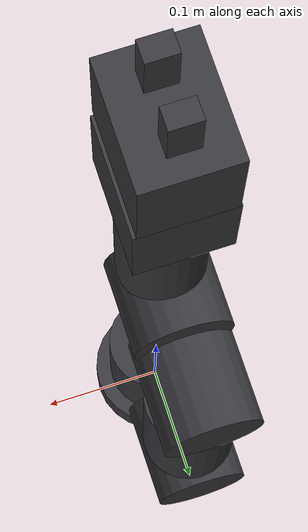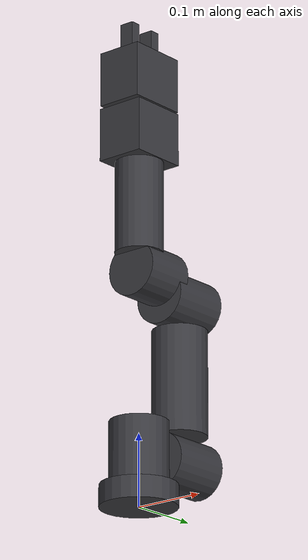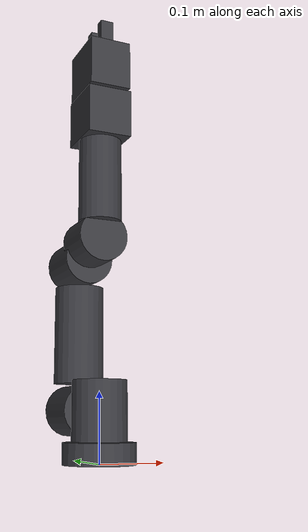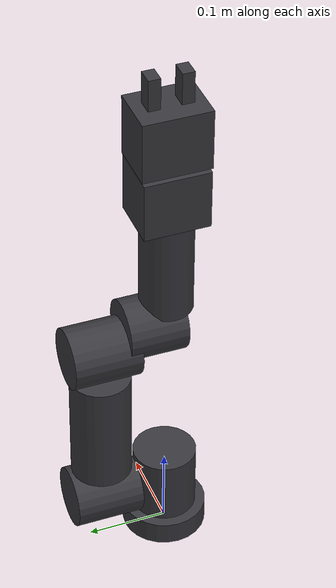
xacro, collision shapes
<?xml version="1.0"?>
<robot name="eb15" xmlns:xacro="http://www.ros.org/wiki/xacro">

  <!-- Arguments -->
  <xacro:arg name="use_gripper" default="true"/>
  <xacro:arg name="use_sim" default="false"/>
  <xacro:arg name="controllers_yaml" default="$(find eb15_description)/config/eb15_controllers.yaml"/>

  <!-- Core Robot Description Modules -->
  <xacro:include filename="materials.xacro"/>
  <xacro:include filename="base.xacro"/>
  <xacro:include filename="shoulder.xacro"/>
  <xacro:include filename="upper_arm.xacro"/>
  <xacro:include filename="forearm.xacro"/>

  <!-- End Effector (EBG-20 Adaptive Gripper) -->
  <xacro:if value="$(arg use_gripper)">
    <xacro:include filename="gripper.xacro"/>
  </xacro:if>

  <!-- Gazebo Physics & ros2_control Simulation Plugins -->
  <xacro:if value="$(arg use_sim)">
    <xacro:include filename="eb15.ros2_control.xacro"/>
    <xacro:include filename="eb15.gazebo.xacro"/>

    <xacro:eb15_ros2_control name="EB15GazeboSim"/>
    <xacro:eb15_gazebo controllers_yaml="$(arg controllers_yaml)"/>
  </xacro:if>

</robot>

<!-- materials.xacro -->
<robot xmlns:xacro="http://www.ros.org/wiki/xacro">

  <!-- MATERIALS DEFINITION                              -->
  <material name="dark_gray">
    <color rgba="0.22 0.22 0.24 1.0"/>
  </material>

  <material name="light_white">
    <color rgba="0.94 0.94 0.96 1.0"/>
  </material>

  <material name="metallic">
    <color rgba="0.65 0.65 0.70 1.0"/>
  </material>

  <material name="accent_red">
    <color rgba="0.85 0.20 0.20 1.0"/>
  </material>

</robot>

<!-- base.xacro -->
<robot xmlns:xacro="http://www.ros.org/wiki/xacro">

  <!-- WORLD LINK & BASE FIXTURE                         -->
  <link name="world"/>

  <joint name="world_joint" type="fixed">
    <parent link="world"/>
    <child link="base_link"/>
    <origin xyz="0 0 0" rpy="0 0 0"/>
  </joint>

  <!-- BASE LINK (001 Base Plate + 002 Washer)           -->
  <link name="base_link">
    <!-- 001 Base Plate -->
    <visual>
      <origin xyz="-0.100 -0.100 0.0" rpy="0 0 0"/>
      <geometry>
        <mesh filename="package://eb15_description/meshes/001.stl" scale="0.001 0.001 0.001"/>
      </geometry>
      <material name="dark_gray"/>
    </visual>

    <!-- 002 Washer (Thickness: 0.8mm) -->
    <visual>
      <origin xyz="-0.100 -0.100 0.030" rpy="0 0 0"/>
      <geometry>
        <mesh filename="package://eb15_description/meshes/002.stl" scale="0.001 0.001 0.001"/>
      </geometry>
      <material name="metallic"/>
    </visual>

    <collision>
      <origin xyz="0 0 0.015" rpy="0 0 0"/>
      <geometry>
        <cylinder radius="0.0525" length="0.030"/>
      </geometry>
    </collision>

    <inertial>
      <origin xyz="0 0 0.015" rpy="0 0 0"/>
      <mass value="0.50"/>
      <inertia ixx="0.0008" ixy="0" ixz="0" iyy="0.0008" iyz="0" izz="0.0012"/>
    </inertial>
  </link>

</robot>

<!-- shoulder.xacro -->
<robot xmlns:xacro="http://www.ros.org/wiki/xacro">

  <!-- JOINT 1 (BASE PAN / YAW)                          -->
  <joint name="joint1" type="revolute">
    <parent link="base_link"/>
    <child link="link1"/>
    <origin xyz="0 0 0.0308" rpy="0 0 0"/>
    <axis xyz="0 0 1"/>
    <limit lower="-3.14159" upper="3.14159" effort="15.0" velocity="3.14"/>
    <dynamics damping="0.5" friction="0.1"/>
  </joint>

  <!-- LINK 1 (SHOULDER COLUMN: 003 + 004 Cap + 005)     -->
  <link name="link1">
    <!-- 003 Shoulder Column Housing -->
    <visual>
      <origin xyz="-0.100 0.100 0.0" rpy="0 0 -1.5707963"/>
      <geometry>
        <mesh filename="package://eb15_description/meshes/003.stl" scale="0.001 0.001 0.001"/>
      </geometry>
      <material name="dark_gray"/>
    </visual>

    <!-- 004 Top Angle Cap -->
    <visual>
      <origin xyz="0.100 0.100 0.0942" rpy="3.14159265 0 -1.5707963"/>
      <geometry>
        <mesh filename="package://eb15_description/meshes/004.stl" scale="0.001 0.001 0.001"/>
      </geometry>
      <material name="light_white"/>
    </visual>

    <!-- 005 Washer -->
    <visual>
      <origin xyz="-0.100 0.040 0.143" rpy="-1.5707963 0 0"/>
      <geometry>
        <mesh filename="package://eb15_description/meshes/005.stl" scale="0.001 0.001 0.001"/>
      </geometry>
      <material name="metallic"/>
    </visual>

    <collision>
      <origin xyz="0 0 0.0425" rpy="0 0 0"/>
      <geometry>
        <cylinder radius="0.040" length="0.085"/>
      </geometry>
    </collision>

    <inertial>
      <origin xyz="0 0.015 0.043" rpy="0 0 0"/>
      <mass value="0.75"/>
      <inertia ixx="0.001" ixy="0" ixz="0" iyy="0.001" iyz="0" izz="0.0008"/>
    </inertial>
  </link>

</robot>

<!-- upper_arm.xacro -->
<robot xmlns:xacro="http://www.ros.org/wiki/xacro">

  <!-- JOINT 2 (SHOULDER PITCH)                          -->
  <joint name="joint2" type="revolute">
    <parent link="link1"/>
    <child link="link2"/>
    <origin xyz="0 0.0838 0.043" rpy="0 0 0"/>
    <axis xyz="0 1 0"/>
    <limit lower="-1.570796" upper="1.570796" effort="15.0" velocity="3.14"/>
    <dynamics damping="0.5" friction="0.1"/>
  </joint>

  <!-- LINK 2 (UPPER ARM: 006..013)                      -->
  <link name="link2">
    <!-- 006 Shoulder Joint Housing -->
    <visual>
      <origin xyz="0.100 -0.043 -0.100" rpy="1.5707963 0 3.14159265"/>
      <geometry>
        <mesh filename="package://eb15_description/meshes/006.stl" scale="0.001 0.001 0.001"/>
      </geometry>
      <material name="dark_gray"/>
    </visual>

    <!-- 007 Shoulder Outer Cap -->
    <visual>
      <origin xyz="-0.100 0.042 -0.100" rpy="1.5707963 0 0"/>
      <geometry>
        <mesh filename="package://eb15_description/meshes/007.stl" scale="0.001 0.001 0.001"/>
      </geometry>
      <material name="light_white"/>
    </visual>

    <!-- 008 Washer -->
    <visual>
      <origin xyz="-0.100 -0.100 0.040" rpy="0 0 0"/>
      <geometry>
        <mesh filename="package://eb15_description/meshes/008.stl" scale="0.001 0.001 0.001"/>
      </geometry>
      <material name="metallic"/>
    </visual>

    <!-- 009 Upper Arm White Tube -->
    <visual>
      <origin xyz="-0.100 -0.100 0.043" rpy="0 0 0"/>
      <geometry>
        <mesh filename="package://eb15_description/meshes/009.stl" scale="0.001 0.001 0.001"/>
      </geometry>
      <material name="light_white"/>
    </visual>

    <!-- 010 Washer -->
    <visual>
      <origin xyz="-0.100 -0.100 0.185" rpy="0 0 0"/>
      <geometry>
        <mesh filename="package://eb15_description/meshes/010.stl" scale="0.001 0.001 0.001"/>
      </geometry>
      <material name="metallic"/>
    </visual>

    <!-- 011 Elbow Joint Housing -->
    <visual>
      <origin xyz="0.100 -0.043 0.128" rpy="1.5707963 0 3.14159265"/>
      <geometry>
        <mesh filename="package://eb15_description/meshes/011.stl" scale="0.001 0.001 0.001"/>
      </geometry>
      <material name="dark_gray"/>
    </visual>

    <!-- 012 Elbow Outer Cap -->
    <visual>
      <origin xyz="-0.100 0.042 0.128" rpy="1.5707963 0 0"/>
      <geometry>
        <mesh filename="package://eb15_description/meshes/012.stl" scale="0.001 0.001 0.001"/>
      </geometry>
      <material name="light_white"/>
    </visual>

    <!-- 013 Washer -->
    <visual>
      <origin xyz="-0.100 -0.043 0.128" rpy="1.5707963 0 0"/>
      <geometry>
        <mesh filename="package://eb15_description/meshes/013.stl" scale="0.001 0.001 0.001"/>
      </geometry>
      <material name="metallic"/>
    </visual>

    <!-- Collision geometry -->
    <collision>
      <origin xyz="0 0 0.114" rpy="0 0 0"/>
      <geometry>
        <cylinder radius="0.038" length="0.148"/>
      </geometry>
    </collision>
    <collision>
      <origin xyz="0 0 0" rpy="1.5707963 0 0"/>
      <geometry>
        <cylinder radius="0.038" length="0.085"/>
      </geometry>
    </collision>
    <collision>
      <origin xyz="0 0 0.228" rpy="1.5707963 0 0"/>
      <geometry>
        <cylinder radius="0.038" length="0.085"/>
      </geometry>
    </collision>

    <inertial>
      <origin xyz="0 0 0.114" rpy="0 0 0"/>
      <mass value="1.20"/>
      <inertia ixx="0.006" ixy="0" ixz="0" iyy="0.006" iyz="0" izz="0.001"/>
    </inertial>
  </link>

</robot>

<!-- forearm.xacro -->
<robot xmlns:xacro="http://www.ros.org/wiki/xacro">

  <!-- Joint 3 Limits (avoiding base collisions) -->
  <xacro:property name="j3_lower_limit" value="-2.700"/>
  <xacro:property name="j3_upper_limit" value="2.700"/>

  <!-- JOINT 3 (ELBOW PITCH)                             -->
  <joint name="joint3" type="revolute">
    <parent link="link2"/>
    <child link="link3"/>
    <origin xyz="0 -0.0838 0.228" rpy="0 0 0"/>
    <axis xyz="0 1 0"/>
    <limit lower="${j3_lower_limit}" upper="${j3_upper_limit}" effort="12.0" velocity="3.14"/>
    <dynamics damping="0.4" friction="0.1"/>
  </joint>

  <!-- LINK 3 (FOREARM: 014 + 015)                       -->
  <link name="link3">
    <!-- 014 Elbow Bracket -->
    <visual>
      <origin xyz="-0.100 0.040 -0.095" rpy="1.5707963 0 0"/>
      <geometry>
        <mesh filename="package://eb15_description/meshes/014.stl" scale="0.001 0.001 0.001"/>
      </geometry>
      <material name="dark_gray"/>
    </visual>

    <!-- 015 Forearm White Tube -->
    <visual>
      <origin xyz="-0.100 -0.100 0.048" rpy="0 0 0"/>
      <geometry>
        <mesh filename="package://eb15_description/meshes/015.stl" scale="0.001 0.001 0.001"/>
      </geometry>
      <material name="light_white"/>
    </visual>

    <!-- Collision geometry -->
    <collision>
      <origin xyz="0 0 0.113" rpy="0 0 0"/>
      <geometry>
        <cylinder radius="0.033" length="0.130"/>
      </geometry>
    </collision>
    <collision>
      <origin xyz="0 0.020 0.024" rpy="1.5707963 0 0"/>
      <geometry>
        <cylinder radius="0.038" length="0.073"/>
      </geometry>
    </collision>

    <inertial>
      <origin xyz="0 0 0.090" rpy="0 0 0"/>
      <mass value="0.80"/>
      <inertia ixx="0.003" ixy="0" ixz="0" iyy="0.003" iyz="0" izz="0.0006"/>
    </inertial>
  </link>

  <!-- WRIST BASE (FIXED ADAPTER TO FOREARM TUBE 015)    -->
  <joint name="wrist_base_joint" type="fixed">
    <parent link="link3"/>
    <child link="wrist_base_link"/>
    <!-- Rotated -90 deg (-pi/2 rad) clockwise so servo axis aligns with elbow axis -->
    <origin xyz="0 0 0.178" rpy="0 0 -1.5707963"/>
  </joint>

  <link name="wrist_base_link">
    <visual>
      <origin xyz="0 0 0" rpy="0 0 0"/>
      <geometry>
        <mesh filename="package://eb15_description/meshes/wrist_base.stl" scale="0.001 0.001 0.001"/>
      </geometry>
      <material name="dark_gray"/>
    </visual>
    <collision>
      <origin xyz="0 0 0.037" rpy="0 0 0"/>
      <geometry>
        <box size="0.082 0.069 0.075"/>
      </geometry>
    </collision>
    <inertial>
      <origin xyz="0 0 0.037" rpy="0 0 0"/>
      <mass value="0.22"/>
      <inertia ixx="0.0002" ixy="0" ixz="0" iyy="0.0002" iyz="0" izz="0.0002"/>
    </inertial>
  </link>

  <!-- WRIST JOINT (REVOLUTE WRIST ROLL - SERVO HORN)    -->
  <joint name="wrist_joint" type="revolute">
    <parent link="wrist_base_link"/>
    <child link="wrist_link"/>
    <origin xyz="0 0 0" rpy="0 0 0"/>
    <axis xyz="0 0 1"/>
    <limit lower="-1.570796" upper="1.570796" effort="5.0" velocity="3.14"/>
    <dynamics damping="0.1" friction="0.05"/>
  </joint>

  <link name="wrist_link">
    <visual>
      <origin xyz="0 0 0" rpy="0 0 0"/>
      <geometry>
        <mesh filename="package://eb15_description/meshes/wrist_rot.stl" scale="0.001 0.001 0.001"/>
      </geometry>
      <material name="light_white"/>
    </visual>
    <collision>
      <origin xyz="0 0 0.073" rpy="0 0 0"/>
      <geometry>
        <cylinder radius="0.028" length="0.029"/>
      </geometry>
    </collision>
    <inertial>
      <origin xyz="0 0 0.073" rpy="0 0 0"/>
      <mass value="0.08"/>
      <inertia ixx="0.00005" ixy="0" ixz="0" iyy="0.00005" iyz="0" izz="0.00005"/>
    </inertial>
  </link>

  <!-- TOOL0 (END EFFECTOR FLANGE AT TOP OF SERVO HORN)  -->
  <joint name="tool_joint" type="fixed">
    <parent link="wrist_link"/>
    <child link="tool0"/>
    <origin xyz="0 0 0.0877" rpy="0 0 0"/>
  </joint>

  <link name="tool0"/>

</robot>

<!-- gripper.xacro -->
<robot xmlns:xacro="http://www.ros.org/wiki/xacro">

  <!-- Gripper Stroke Limits (padded bounds to prevent float32/float64 edge violations in MoveIt) -->
  <xacro:property name="gripper_open_limit"  value="-0.018"/>
  <xacro:property name="gripper_close_limit" value="0.015"/>

  <!-- EBG-20 ADAPTIVE ROBOT GRIPPER                     -->
  <!-- Fixed base attached to tool0: wrist piece inserts 9.5mm into collar of 002 -->
  <joint name="gripper_base_joint" type="fixed">
    <parent link="tool0"/>
    <child link="gripper_base_link"/>
    <origin xyz="0 0 -0.0095" rpy="0 0 0"/>
  </joint>

  <link name="gripper_base_link">
    <!-- Main Housing (002 + 003 + 015 Pinion) -->
    <visual>
      <origin xyz="0 0 0" rpy="0 0 0"/>
      <geometry>
        <mesh filename="package://eb15_description/meshes/gripper_base.stl" scale="0.001 0.001 0.001"/>
      </geometry>
      <material name="dark_gray"/>
    </visual>
    <!-- Front Cover Plate (004) -->
    <visual>
      <origin xyz="0 0 0" rpy="0 0 0"/>
      <geometry>
        <mesh filename="package://eb15_description/meshes/gripper_cover.stl" scale="0.001 0.001 0.001"/>
      </geometry>
      <material name="light_white"/>
    </visual>

    <collision>
      <origin xyz="0 0 0.0385" rpy="0 0 0"/>
      <geometry>
        <box size="0.085 0.065 0.077"/>
      </geometry>
    </collision>

    <inertial>
      <origin xyz="0 0 0.0385" rpy="0 0 0"/>
      <mass value="0.22"/>
      <inertia ixx="0.00015" ixy="0" ixz="0" iyy="0.00018" iyz="0" izz="0.00012"/>
    </inertial>
  </link>

  <!-- GRIPPER LEFT FINGER (010 + 011 + 007 + 008 + 009) -->
  <!-- Prismatic joint sliding along X (inward to close) -->
  <joint name="gripper_left_joint" type="prismatic">
    <parent link="gripper_base_link"/>
    <child link="gripper_left_finger_link"/>
    <origin xyz="0 0 0" rpy="0 0 0"/>
    <axis xyz="1 0 0"/>
    <limit lower="${gripper_open_limit}" upper="${gripper_close_limit}" effort="20.0" velocity="0.05"/>
    <dynamics damping="0.5" friction="0.1"/>
  </joint>

  <link name="gripper_left_finger_link">
    <!-- Finger Body & Rack (010 + 011 + 007 + 008) -->
    <visual>
      <origin xyz="0 0 0" rpy="0 0 0"/>
      <geometry>
        <mesh filename="package://eb15_description/meshes/gripper_left_finger.stl" scale="0.001 0.001 0.001"/>
      </geometry>
      <material name="dark_gray"/>
    </visual>
    <!-- White Grip Pad (009) -->
    <visual>
      <origin xyz="0 0 0" rpy="0 0 0"/>
      <geometry>
        <mesh filename="package://eb15_description/meshes/gripper_left_pad.stl" scale="0.001 0.001 0.001"/>
      </geometry>
      <material name="light_white"/>
    </visual>

    <collision>
      <origin xyz="-0.020 0 0.098" rpy="0 0 0"/>
      <geometry>
        <box size="0.015 0.021 0.040"/>
      </geometry>
    </collision>

    <inertial>
      <origin xyz="-0.015 0 0.088" rpy="0 0 0"/>
      <mass value="0.04"/>
      <inertia ixx="0.00001" ixy="0" ixz="0" iyy="0.00001" iyz="0" izz="0.00001"/>
    </inertial>
  </link>

  <!-- GRIPPER RIGHT FINGER (005 + 006 + 012 + 013 + 014) -->
  <!-- Prismatic joint sliding along -X (mimics left)     -->
  <joint name="gripper_right_joint" type="prismatic">
    <parent link="gripper_base_link"/>
    <child link="gripper_right_finger_link"/>
    <origin xyz="0 0 0" rpy="0 0 0"/>
    <axis xyz="-1 0 0"/>
    <limit lower="${gripper_open_limit}" upper="${gripper_close_limit}" effort="20.0" velocity="0.05"/>
    <mimic joint="gripper_left_joint" multiplier="1.0" offset="0.0"/>
    <dynamics damping="0.5" friction="0.1"/>
  </joint>

  <link name="gripper_right_finger_link">
    <!-- Finger Body & Rack (005 + 006 + 012 + 013) -->
    <visual>
      <origin xyz="0 0 0" rpy="0 0 0"/>
      <geometry>
        <mesh filename="package://eb15_description/meshes/gripper_right_finger.stl" scale="0.001 0.001 0.001"/>
      </geometry>
      <material name="dark_gray"/>
    </visual>
    <!-- White Grip Pad (014) -->
    <visual>
      <origin xyz="0 0 0" rpy="0 0 0"/>
      <geometry>
        <mesh filename="package://eb15_description/meshes/gripper_right_pad.stl" scale="0.001 0.001 0.001"/>
      </geometry>
      <material name="light_white"/>
    </visual>

    <collision>
      <origin xyz="0.020 0 0.098" rpy="0 0 0"/>
      <geometry>
        <box size="0.015 0.021 0.040"/>
      </geometry>
    </collision>

    <inertial>
      <origin xyz="0.015 0 0.088" rpy="0 0 0"/>
      <mass value="0.04"/>
      <inertia ixx="0.00001" ixy="0" ixz="0" iyy="0.00001" iyz="0" izz="0.00001"/>
    </inertial>
  </link>

  <!-- GRIPPER TCP (TOOL CENTER POINT / GRASP FRAME)     -->
  <joint name="gripper_tcp_joint" type="fixed">
    <parent link="gripper_base_link"/>
    <child link="gripper_tcp"/>
    <origin xyz="0 0 0.098" rpy="0 0 0"/>
  </joint>

  <link name="gripper_tcp">
    <visual>
      <origin xyz="0 0 0" rpy="0 0 0"/>
      <geometry>
        <sphere radius="0.004"/>
      </geometry>
      <material name="accent_red"/>
    </visual>
  </link>

</robot>
